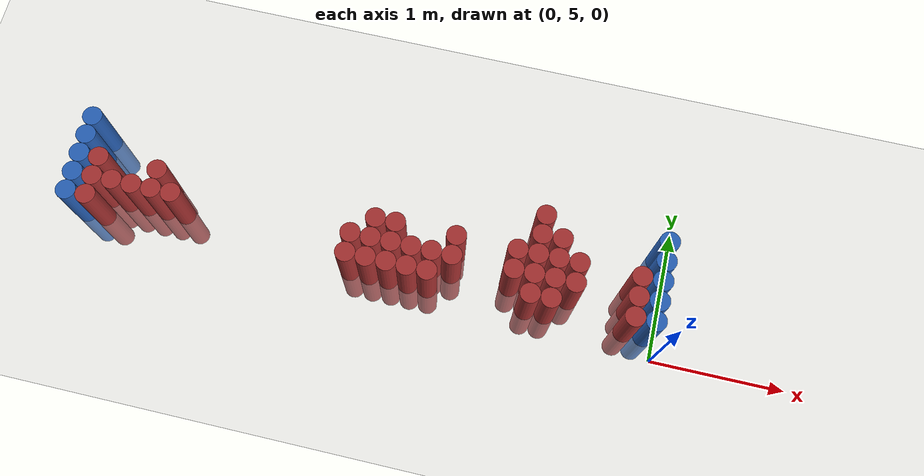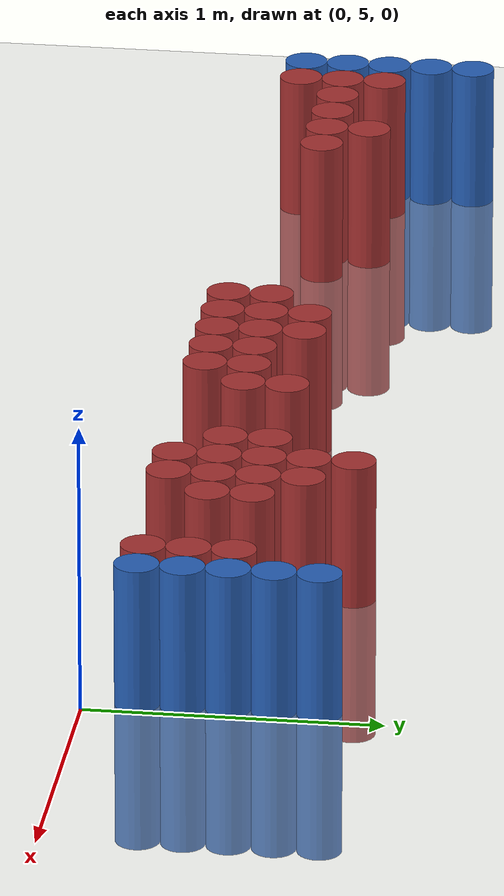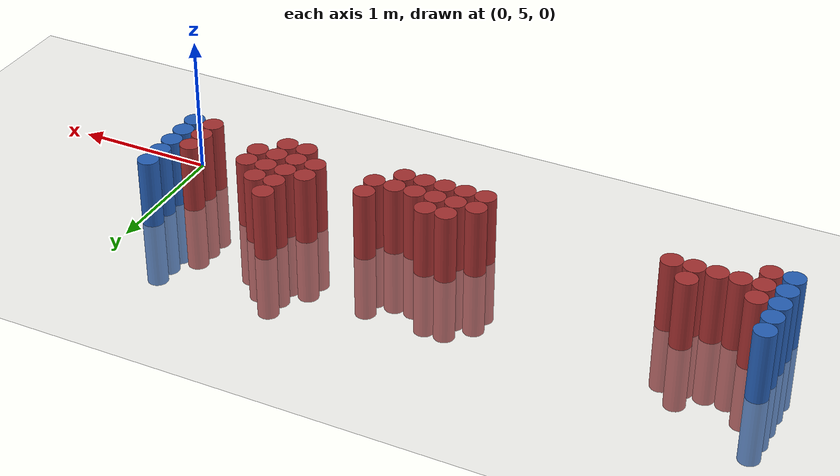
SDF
<sdf version="1.6">
 <world name="default">
  <model name="ground_plane">
   <static>1</static>
   <link name="link">
    <collision name="collision">
     <geometry><plane><normal>0 0 1</normal><size>100 100</size></plane></geometry>
     <surface><friction><ode><mu>100</mu><mu2>50</mu2></ode></friction></surface>
    </collision>
    <visual name="visual">
     <cast_shadows>0</cast_shadows>
     <geometry><plane><normal>0 0 1</normal><size>100 100</size></plane></geometry>
     <material>
      <script><uri>file://media/materials/scripts/gazebo.material</uri><name>Gazebo/Grey</name></script>
     </material>
    </visual>
   </link>
  </model>
  <model name="unit_cylinder_96">
   <static>1</static>
   <pose>-4.425000 5.175000 0.000000 0.000000 0.000000 0.000000</pose>
   <link name="link">
    <inertial>
     <mass>1</mass>
     <inertia><ixx>0.145833</ixx><ixy>0</ixy><ixz>0</ixz><iyy>0.145833</iyy><iyz>0</iyz><izz>0.125</izz></inertia>
    </inertial>
    <collision name="collision">
     <geometry><cylinder><radius>0.075000</radius><length>1</length></cylinder></geometry>
    </collision>
    <visual name="visual">
     <geometry><cylinder><radius>0.075000</radius><length>1</length></cylinder></geometry>
     <material>
      <ambient>0.152000 0.379000 0.720000 1</ambient>
      <diffuse>0.152000 0.379000 0.720000 1</diffuse>
     </material>
     <material>
      <script><name>Gazebo/Grey</name><uri>file://media/materials/scripts/gazebo.material</uri></script>
     </material>
    </visual>
   </link>
  </model>
  <model name="unit_cylinder_97">
   <static>1</static>
   <pose>-4.425000 5.325000 0.000000 0.000000 0.000000 0.000000</pose>
   <link name="link">
    <inertial>
     <mass>1</mass>
     <inertia><ixx>0.145833</ixx><ixy>0</ixy><ixz>0</ixz><iyy>0.145833</iyy><iyz>0</iyz><izz>0.125</izz></inertia>
    </inertial>
    <collision name="collision">
     <geometry><cylinder><radius>0.075000</radius><length>1</length></cylinder></geometry>
    </collision>
    <visual name="visual">
     <geometry><cylinder><radius>0.075000</radius><length>1</length></cylinder></geometry>
     <material>
      <ambient>0.152000 0.379000 0.720000 1</ambient>
      <diffuse>0.152000 0.379000 0.720000 1</diffuse>
     </material>
     <material>
      <script><name>Gazebo/Grey</name><uri>file://media/materials/scripts/gazebo.material</uri></script>
     </material>
    </visual>
   </link>
  </model>
  <model name="unit_cylinder_98">
   <static>1</static>
   <pose>-4.425000 5.475000 0.000000 0.000000 0.000000 0.000000</pose>
   <link name="link">
    <inertial>
     <mass>1</mass>
     <inertia><ixx>0.145833</ixx><ixy>0</ixy><ixz>0</ixz><iyy>0.145833</iyy><iyz>0</iyz><izz>0.125</izz></inertia>
    </inertial>
    <collision name="collision">
     <geometry><cylinder><radius>0.075000</radius><length>1</length></cylinder></geometry>
    </collision>
    <visual name="visual">
     <geometry><cylinder><radius>0.075000</radius><length>1</length></cylinder></geometry>
     <material>
      <ambient>0.152000 0.379000 0.720000 1</ambient>
      <diffuse>0.152000 0.379000 0.720000 1</diffuse>
     </material>
     <material>
      <script><name>Gazebo/Grey</name><uri>file://media/materials/scripts/gazebo.material</uri></script>
     </material>
    </visual>
   </link>
  </model>
  <model name="unit_cylinder_99">
   <static>1</static>
   <pose>-4.425000 5.625000 0.000000 0.000000 0.000000 0.000000</pose>
   <link name="link">
    <inertial>
     <mass>1</mass>
     <inertia><ixx>0.145833</ixx><ixy>0</ixy><ixz>0</ixz><iyy>0.145833</iyy><iyz>0</iyz><izz>0.125</izz></inertia>
    </inertial>
    <collision name="collision">
     <geometry><cylinder><radius>0.075000</radius><length>1</length></cylinder></geometry>
    </collision>
    <visual name="visual">
     <geometry><cylinder><radius>0.075000</radius><length>1</length></cylinder></geometry>
     <material>
      <ambient>0.152000 0.379000 0.720000 1</ambient>
      <diffuse>0.152000 0.379000 0.720000 1</diffuse>
     </material>
     <material>
      <script><name>Gazebo/Grey</name><uri>file://media/materials/scripts/gazebo.material</uri></script>
     </material>
    </visual>
   </link>
  </model>
  <model name="unit_cylinder_100">
   <static>1</static>
   <pose>-4.425000 5.775000 0.000000 0.000000 0.000000 0.000000</pose>
   <link name="link">
    <inertial>
     <mass>1</mass>
     <inertia><ixx>0.145833</ixx><ixy>0</ixy><ixz>0</ixz><iyy>0.145833</iyy><iyz>0</iyz><izz>0.125</izz></inertia>
    </inertial>
    <collision name="collision">
     <geometry><cylinder><radius>0.075000</radius><length>1</length></cylinder></geometry>
    </collision>
    <visual name="visual">
     <geometry><cylinder><radius>0.075000</radius><length>1</length></cylinder></geometry>
     <material>
      <ambient>0.152000 0.379000 0.720000 1</ambient>
      <diffuse>0.152000 0.379000 0.720000 1</diffuse>
     </material>
     <material>
      <script><name>Gazebo/Grey</name><uri>file://media/materials/scripts/gazebo.material</uri></script>
     </material>
    </visual>
   </link>
  </model>
  <model name="unit_cylinder_126">
   <static>1</static>
   <pose>-4.275000 5.175000 0.000000 0.000000 0.000000 0.000000</pose>
   <link name="link">
    <inertial>
     <mass>1</mass>
     <inertia><ixx>0.145833</ixx><ixy>0</ixy><ixz>0</ixz><iyy>0.145833</iyy><iyz>0</iyz><izz>0.125</izz></inertia>
    </inertial>
    <collision name="collision">
     <geometry><cylinder><radius>0.075000</radius><length>1</length></cylinder></geometry>
    </collision>
    <visual name="visual">
     <geometry><cylinder><radius>0.075000</radius><length>1</length></cylinder></geometry>
     <material>
      <ambient>0.648000 0.192000 0.192000 1</ambient>
      <diffuse>0.648000 0.192000 0.192000 1</diffuse>
     </material>
     <material>
      <script><name>Gazebo/Grey</name><uri>file://media/materials/scripts/gazebo.material</uri></script>
     </material>
    </visual>
   </link>
  </model>
  <model name="unit_cylinder_127">
   <static>1</static>
   <pose>-4.275000 5.325000 0.000000 0.000000 0.000000 0.000000</pose>
   <link name="link">
    <inertial>
     <mass>1</mass>
     <inertia><ixx>0.145833</ixx><ixy>0</ixy><ixz>0</ixz><iyy>0.145833</iyy><iyz>0</iyz><izz>0.125</izz></inertia>
    </inertial>
    <collision name="collision">
     <geometry><cylinder><radius>0.075000</radius><length>1</length></cylinder></geometry>
    </collision>
    <visual name="visual">
     <geometry><cylinder><radius>0.075000</radius><length>1</length></cylinder></geometry>
     <material>
      <ambient>0.648000 0.192000 0.192000 1</ambient>
      <diffuse>0.648000 0.192000 0.192000 1</diffuse>
     </material>
     <material>
      <script><name>Gazebo/Grey</name><uri>file://media/materials/scripts/gazebo.material</uri></script>
     </material>
    </visual>
   </link>
  </model>
  <model name="unit_cylinder_128">
   <static>1</static>
   <pose>-4.275000 5.475000 0.000000 0.000000 0.000000 0.000000</pose>
   <link name="link">
    <inertial>
     <mass>1</mass>
     <inertia><ixx>0.145833</ixx><ixy>0</ixy><ixz>0</ixz><iyy>0.145833</iyy><iyz>0</iyz><izz>0.125</izz></inertia>
    </inertial>
    <collision name="collision">
     <geometry><cylinder><radius>0.075000</radius><length>1</length></cylinder></geometry>
    </collision>
    <visual name="visual">
     <geometry><cylinder><radius>0.075000</radius><length>1</length></cylinder></geometry>
     <material>
      <ambient>0.648000 0.192000 0.192000 1</ambient>
      <diffuse>0.648000 0.192000 0.192000 1</diffuse>
     </material>
     <material>
      <script><name>Gazebo/Grey</name><uri>file://media/materials/scripts/gazebo.material</uri></script>
     </material>
    </visual>
   </link>
  </model>
  <model name="unit_cylinder_135">
   <static>1</static>
   <pose>-4.125000 5.325000 0.000000 0.000000 0.000000 0.000000</pose>
   <link name="link">
    <inertial>
     <mass>1</mass>
     <inertia><ixx>0.145833</ixx><ixy>0</ixy><ixz>0</ixz><iyy>0.145833</iyy><iyz>0</iyz><izz>0.125</izz></inertia>
    </inertial>
    <collision name="collision">
     <geometry><cylinder><radius>0.075000</radius><length>1</length></cylinder></geometry>
    </collision>
    <visual name="visual">
     <geometry><cylinder><radius>0.075000</radius><length>1</length></cylinder></geometry>
     <material>
      <ambient>0.648000 0.192000 0.192000 1</ambient>
      <diffuse>0.648000 0.192000 0.192000 1</diffuse>
     </material>
     <material>
      <script><name>Gazebo/Grey</name><uri>file://media/materials/scripts/gazebo.material</uri></script>
     </material>
    </visual>
   </link>
  </model>
  <model name="unit_cylinder_143">
   <static>1</static>
   <pose>-3.975000 5.325000 0.000000 0.000000 0.000000 0.000000</pose>
   <link name="link">
    <inertial>
     <mass>1</mass>
     <inertia><ixx>0.145833</ixx><ixy>0</ixy><ixz>0</ixz><iyy>0.145833</iyy><iyz>0</iyz><izz>0.125</izz></inertia>
    </inertial>
    <collision name="collision">
     <geometry><cylinder><radius>0.075000</radius><length>1</length></cylinder></geometry>
    </collision>
    <visual name="visual">
     <geometry><cylinder><radius>0.075000</radius><length>1</length></cylinder></geometry>
     <material>
      <ambient>0.648000 0.192000 0.192000 1</ambient>
      <diffuse>0.648000 0.192000 0.192000 1</diffuse>
     </material>
     <material>
      <script><name>Gazebo/Grey</name><uri>file://media/materials/scripts/gazebo.material</uri></script>
     </material>
    </visual>
   </link>
  </model>
  <model name="unit_cylinder_159">
   <static>1</static>
   <pose>-3.825000 5.325000 0.000000 0.000000 0.000000 0.000000</pose>
   <link name="link">
    <inertial>
     <mass>1</mass>
     <inertia><ixx>0.145833</ixx><ixy>0</ixy><ixz>0</ixz><iyy>0.145833</iyy><iyz>0</iyz><izz>0.125</izz></inertia>
    </inertial>
    <collision name="collision">
     <geometry><cylinder><radius>0.075000</radius><length>1</length></cylinder></geometry>
    </collision>
    <visual name="visual">
     <geometry><cylinder><radius>0.075000</radius><length>1</length></cylinder></geometry>
     <material>
      <ambient>0.648000 0.192000 0.192000 1</ambient>
      <diffuse>0.648000 0.192000 0.192000 1</diffuse>
     </material>
     <material>
      <script><name>Gazebo/Grey</name><uri>file://media/materials/scripts/gazebo.material</uri></script>
     </material>
    </visual>
   </link>
  </model>
  <model name="unit_cylinder_160">
   <static>1</static>
   <pose>-3.825000 5.475000 0.000000 0.000000 0.000000 0.000000</pose>
   <link name="link">
    <inertial>
     <mass>1</mass>
     <inertia><ixx>0.145833</ixx><ixy>0</ixy><ixz>0</ixz><iyy>0.145833</iyy><iyz>0</iyz><izz>0.125</izz></inertia>
    </inertial>
    <collision name="collision">
     <geometry><cylinder><radius>0.075000</radius><length>1</length></cylinder></geometry>
    </collision>
    <visual name="visual">
     <geometry><cylinder><radius>0.075000</radius><length>1</length></cylinder></geometry>
     <material>
      <ambient>0.648000 0.192000 0.192000 1</ambient>
      <diffuse>0.648000 0.192000 0.192000 1</diffuse>
     </material>
     <material>
      <script><name>Gazebo/Grey</name><uri>file://media/materials/scripts/gazebo.material</uri></script>
     </material>
    </visual>
   </link>
  </model>
  <model name="unit_cylinder_171">
   <static>1</static>
   <pose>-3.675000 5.325000 0.000000 0.000000 0.000000 0.000000</pose>
   <link name="link">
    <inertial>
     <mass>1</mass>
     <inertia><ixx>0.145833</ixx><ixy>0</ixy><ixz>0</ixz><iyy>0.145833</iyy><iyz>0</iyz><izz>0.125</izz></inertia>
    </inertial>
    <collision name="collision">
     <geometry><cylinder><radius>0.075000</radius><length>1</length></cylinder></geometry>
    </collision>
    <visual name="visual">
     <geometry><cylinder><radius>0.075000</radius><length>1</length></cylinder></geometry>
     <material>
      <ambient>0.648000 0.192000 0.192000 1</ambient>
      <diffuse>0.648000 0.192000 0.192000 1</diffuse>
     </material>
     <material>
      <script><name>Gazebo/Grey</name><uri>file://media/materials/scripts/gazebo.material</uri></script>
     </material>
    </visual>
   </link>
  </model>
  <model name="unit_cylinder_190">
   <static>1</static>
   <pose>-2.325000 5.175000 0.000000 0.000000 0.000000 0.000000</pose>
   <link name="link">
    <inertial>
     <mass>1</mass>
     <inertia><ixx>0.145833</ixx><ixy>0</ixy><ixz>0</ixz><iyy>0.145833</iyy><iyz>0</iyz><izz>0.125</izz></inertia>
    </inertial>
    <collision name="collision">
     <geometry><cylinder><radius>0.075000</radius><length>1</length></cylinder></geometry>
    </collision>
    <visual name="visual">
     <geometry><cylinder><radius>0.075000</radius><length>1</length></cylinder></geometry>
     <material>
      <ambient>0.648000 0.192000 0.192000 1</ambient>
      <diffuse>0.648000 0.192000 0.192000 1</diffuse>
     </material>
     <material>
      <script><name>Gazebo/Grey</name><uri>file://media/materials/scripts/gazebo.material</uri></script>
     </material>
    </visual>
   </link>
  </model>
  <model name="unit_cylinder_191">
   <static>1</static>
   <pose>-2.325000 5.325000 0.000000 0.000000 0.000000 0.000000</pose>
   <link name="link">
    <inertial>
     <mass>1</mass>
     <inertia><ixx>0.145833</ixx><ixy>0</ixy><ixz>0</ixz><iyy>0.145833</iyy><iyz>0</iyz><izz>0.125</izz></inertia>
    </inertial>
    <collision name="collision">
     <geometry><cylinder><radius>0.075000</radius><length>1</length></cylinder></geometry>
    </collision>
    <visual name="visual">
     <geometry><cylinder><radius>0.075000</radius><length>1</length></cylinder></geometry>
     <material>
      <ambient>0.648000 0.192000 0.192000 1</ambient>
      <diffuse>0.648000 0.192000 0.192000 1</diffuse>
     </material>
     <material>
      <script><name>Gazebo/Grey</name><uri>file://media/materials/scripts/gazebo.material</uri></script>
     </material>
    </visual>
   </link>
  </model>
  <model name="unit_cylinder_195">
   <static>1</static>
   <pose>-2.175000 5.175000 0.000000 0.000000 0.000000 0.000000</pose>
   <link name="link">
    <inertial>
     <mass>1</mass>
     <inertia><ixx>0.145833</ixx><ixy>0</ixy><ixz>0</ixz><iyy>0.145833</iyy><iyz>0</iyz><izz>0.125</izz></inertia>
    </inertial>
    <collision name="collision">
     <geometry><cylinder><radius>0.075000</radius><length>1</length></cylinder></geometry>
    </collision>
    <visual name="visual">
     <geometry><cylinder><radius>0.075000</radius><length>1</length></cylinder></geometry>
     <material>
      <ambient>0.648000 0.192000 0.192000 1</ambient>
      <diffuse>0.648000 0.192000 0.192000 1</diffuse>
     </material>
     <material>
      <script><name>Gazebo/Grey</name><uri>file://media/materials/scripts/gazebo.material</uri></script>
     </material>
    </visual>
   </link>
  </model>
  <model name="unit_cylinder_196">
   <static>1</static>
   <pose>-2.175000 5.325000 0.000000 0.000000 0.000000 0.000000</pose>
   <link name="link">
    <inertial>
     <mass>1</mass>
     <inertia><ixx>0.145833</ixx><ixy>0</ixy><ixz>0</ixz><iyy>0.145833</iyy><iyz>0</iyz><izz>0.125</izz></inertia>
    </inertial>
    <collision name="collision">
     <geometry><cylinder><radius>0.075000</radius><length>1</length></cylinder></geometry>
    </collision>
    <visual name="visual">
     <geometry><cylinder><radius>0.075000</radius><length>1</length></cylinder></geometry>
     <material>
      <ambient>0.648000 0.192000 0.192000 1</ambient>
      <diffuse>0.648000 0.192000 0.192000 1</diffuse>
     </material>
     <material>
      <script><name>Gazebo/Grey</name><uri>file://media/materials/scripts/gazebo.material</uri></script>
     </material>
    </visual>
   </link>
  </model>
  <model name="unit_cylinder_197">
   <static>1</static>
   <pose>-2.175000 5.475000 0.000000 0.000000 0.000000 0.000000</pose>
   <link name="link">
    <inertial>
     <mass>1</mass>
     <inertia><ixx>0.145833</ixx><ixy>0</ixy><ixz>0</ixz><iyy>0.145833</iyy><iyz>0</iyz><izz>0.125</izz></inertia>
    </inertial>
    <collision name="collision">
     <geometry><cylinder><radius>0.075000</radius><length>1</length></cylinder></geometry>
    </collision>
    <visual name="visual">
     <geometry><cylinder><radius>0.075000</radius><length>1</length></cylinder></geometry>
     <material>
      <ambient>0.648000 0.192000 0.192000 1</ambient>
      <diffuse>0.648000 0.192000 0.192000 1</diffuse>
     </material>
     <material>
      <script><name>Gazebo/Grey</name><uri>file://media/materials/scripts/gazebo.material</uri></script>
     </material>
    </visual>
   </link>
  </model>
  <model name="unit_cylinder_204">
   <static>1</static>
   <pose>-2.025000 5.175000 0.000000 0.000000 0.000000 0.000000</pose>
   <link name="link">
    <inertial>
     <mass>1</mass>
     <inertia><ixx>0.145833</ixx><ixy>0</ixy><ixz>0</ixz><iyy>0.145833</iyy><iyz>0</iyz><izz>0.125</izz></inertia>
    </inertial>
    <collision name="collision">
     <geometry><cylinder><radius>0.075000</radius><length>1</length></cylinder></geometry>
    </collision>
    <visual name="visual">
     <geometry><cylinder><radius>0.075000</radius><length>1</length></cylinder></geometry>
     <material>
      <ambient>0.648000 0.192000 0.192000 1</ambient>
      <diffuse>0.648000 0.192000 0.192000 1</diffuse>
     </material>
     <material>
      <script><name>Gazebo/Grey</name><uri>file://media/materials/scripts/gazebo.material</uri></script>
     </material>
    </visual>
   </link>
  </model>
  <model name="unit_cylinder_205">
   <static>1</static>
   <pose>-2.025000 5.325000 0.000000 0.000000 0.000000 0.000000</pose>
   <link name="link">
    <inertial>
     <mass>1</mass>
     <inertia><ixx>0.145833</ixx><ixy>0</ixy><ixz>0</ixz><iyy>0.145833</iyy><iyz>0</iyz><izz>0.125</izz></inertia>
    </inertial>
    <collision name="collision">
     <geometry><cylinder><radius>0.075000</radius><length>1</length></cylinder></geometry>
    </collision>
    <visual name="visual">
     <geometry><cylinder><radius>0.075000</radius><length>1</length></cylinder></geometry>
     <material>
      <ambient>0.648000 0.192000 0.192000 1</ambient>
      <diffuse>0.648000 0.192000 0.192000 1</diffuse>
     </material>
     <material>
      <script><name>Gazebo/Grey</name><uri>file://media/materials/scripts/gazebo.material</uri></script>
     </material>
    </visual>
   </link>
  </model>
  <model name="unit_cylinder_206">
   <static>1</static>
   <pose>-2.025000 5.475000 0.000000 0.000000 0.000000 0.000000</pose>
   <link name="link">
    <inertial>
     <mass>1</mass>
     <inertia><ixx>0.145833</ixx><ixy>0</ixy><ixz>0</ixz><iyy>0.145833</iyy><iyz>0</iyz><izz>0.125</izz></inertia>
    </inertial>
    <collision name="collision">
     <geometry><cylinder><radius>0.075000</radius><length>1</length></cylinder></geometry>
    </collision>
    <visual name="visual">
     <geometry><cylinder><radius>0.075000</radius><length>1</length></cylinder></geometry>
     <material>
      <ambient>0.648000 0.192000 0.192000 1</ambient>
      <diffuse>0.648000 0.192000 0.192000 1</diffuse>
     </material>
     <material>
      <script><name>Gazebo/Grey</name><uri>file://media/materials/scripts/gazebo.material</uri></script>
     </material>
    </visual>
   </link>
  </model>
  <model name="unit_cylinder_213">
   <static>1</static>
   <pose>-1.875000 5.175000 0.000000 0.000000 0.000000 0.000000</pose>
   <link name="link">
    <inertial>
     <mass>1</mass>
     <inertia><ixx>0.145833</ixx><ixy>0</ixy><ixz>0</ixz><iyy>0.145833</iyy><iyz>0</iyz><izz>0.125</izz></inertia>
    </inertial>
    <collision name="collision">
     <geometry><cylinder><radius>0.075000</radius><length>1</length></cylinder></geometry>
    </collision>
    <visual name="visual">
     <geometry><cylinder><radius>0.075000</radius><length>1</length></cylinder></geometry>
     <material>
      <ambient>0.648000 0.192000 0.192000 1</ambient>
      <diffuse>0.648000 0.192000 0.192000 1</diffuse>
     </material>
     <material>
      <script><name>Gazebo/Grey</name><uri>file://media/materials/scripts/gazebo.material</uri></script>
     </material>
    </visual>
   </link>
  </model>
  <model name="unit_cylinder_214">
   <static>1</static>
   <pose>-1.875000 5.325000 0.000000 0.000000 0.000000 0.000000</pose>
   <link name="link">
    <inertial>
     <mass>1</mass>
     <inertia><ixx>0.145833</ixx><ixy>0</ixy><ixz>0</ixz><iyy>0.145833</iyy><iyz>0</iyz><izz>0.125</izz></inertia>
    </inertial>
    <collision name="collision">
     <geometry><cylinder><radius>0.075000</radius><length>1</length></cylinder></geometry>
    </collision>
    <visual name="visual">
     <geometry><cylinder><radius>0.075000</radius><length>1</length></cylinder></geometry>
     <material>
      <ambient>0.648000 0.192000 0.192000 1</ambient>
      <diffuse>0.648000 0.192000 0.192000 1</diffuse>
     </material>
     <material>
      <script><name>Gazebo/Grey</name><uri>file://media/materials/scripts/gazebo.material</uri></script>
     </material>
    </visual>
   </link>
  </model>
  <model name="unit_cylinder_217">
   <static>1</static>
   <pose>-1.725000 5.175000 0.000000 0.000000 0.000000 0.000000</pose>
   <link name="link">
    <inertial>
     <mass>1</mass>
     <inertia><ixx>0.145833</ixx><ixy>0</ixy><ixz>0</ixz><iyy>0.145833</iyy><iyz>0</iyz><izz>0.125</izz></inertia>
    </inertial>
    <collision name="collision">
     <geometry><cylinder><radius>0.075000</radius><length>1</length></cylinder></geometry>
    </collision>
    <visual name="visual">
     <geometry><cylinder><radius>0.075000</radius><length>1</length></cylinder></geometry>
     <material>
      <ambient>0.648000 0.192000 0.192000 1</ambient>
      <diffuse>0.648000 0.192000 0.192000 1</diffuse>
     </material>
     <material>
      <script><name>Gazebo/Grey</name><uri>file://media/materials/scripts/gazebo.material</uri></script>
     </material>
    </visual>
   </link>
  </model>
  <model name="unit_cylinder_218">
   <static>1</static>
   <pose>-1.725000 5.325000 0.000000 0.000000 0.000000 0.000000</pose>
   <link name="link">
    <inertial>
     <mass>1</mass>
     <inertia><ixx>0.145833</ixx><ixy>0</ixy><ixz>0</ixz><iyy>0.145833</iyy><iyz>0</iyz><izz>0.125</izz></inertia>
    </inertial>
    <collision name="collision">
     <geometry><cylinder><radius>0.075000</radius><length>1</length></cylinder></geometry>
    </collision>
    <visual name="visual">
     <geometry><cylinder><radius>0.075000</radius><length>1</length></cylinder></geometry>
     <material>
      <ambient>0.648000 0.192000 0.192000 1</ambient>
      <diffuse>0.648000 0.192000 0.192000 1</diffuse>
     </material>
     <material>
      <script><name>Gazebo/Grey</name><uri>file://media/materials/scripts/gazebo.material</uri></script>
     </material>
    </visual>
   </link>
  </model>
  <model name="unit_cylinder_221">
   <static>1</static>
   <pose>-1.575000 5.325000 0.000000 0.000000 0.000000 0.000000</pose>
   <link name="link">
    <inertial>
     <mass>1</mass>
     <inertia><ixx>0.145833</ixx><ixy>0</ixy><ixz>0</ixz><iyy>0.145833</iyy><iyz>0</iyz><izz>0.125</izz></inertia>
    </inertial>
    <collision name="collision">
     <geometry><cylinder><radius>0.075000</radius><length>1</length></cylinder></geometry>
    </collision>
    <visual name="visual">
     <geometry><cylinder><radius>0.075000</radius><length>1</length></cylinder></geometry>
     <material>
      <ambient>0.648000 0.192000 0.192000 1</ambient>
      <diffuse>0.648000 0.192000 0.192000 1</diffuse>
     </material>
     <material>
      <script><name>Gazebo/Grey</name><uri>file://media/materials/scripts/gazebo.material</uri></script>
     </material>
    </visual>
   </link>
  </model>
  <model name="unit_cylinder_222">
   <static>1</static>
   <pose>-1.575000 5.475000 0.000000 0.000000 0.000000 0.000000</pose>
   <link name="link">
    <inertial>
     <mass>1</mass>
     <inertia><ixx>0.145833</ixx><ixy>0</ixy><ixz>0</ixz><iyy>0.145833</iyy><iyz>0</iyz><izz>0.125</izz></inertia>
    </inertial>
    <collision name="collision">
     <geometry><cylinder><radius>0.075000</radius><length>1</length></cylinder></geometry>
    </collision>
    <visual name="visual">
     <geometry><cylinder><radius>0.075000</radius><length>1</length></cylinder></geometry>
     <material>
      <ambient>0.648000 0.192000 0.192000 1</ambient>
      <diffuse>0.648000 0.192000 0.192000 1</diffuse>
     </material>
     <material>
      <script><name>Gazebo/Grey</name><uri>file://media/materials/scripts/gazebo.material</uri></script>
     </material>
    </visual>
   </link>
  </model>
  <model name="unit_cylinder_246">
   <static>1</static>
   <pose>-1.125000 5.325000 0.000000 0.000000 0.000000 0.000000</pose>
   <link name="link">
    <inertial>
     <mass>1</mass>
     <inertia><ixx>0.145833</ixx><ixy>0</ixy><ixz>0</ixz><iyy>0.145833</iyy><iyz>0</iyz><izz>0.125</izz></inertia>
    </inertial>
    <collision name="collision">
     <geometry><cylinder><radius>0.075000</radius><length>1</length></cylinder></geometry>
    </collision>
    <visual name="visual">
     <geometry><cylinder><radius>0.075000</radius><length>1</length></cylinder></geometry>
     <material>
      <ambient>0.648000 0.192000 0.192000 1</ambient>
      <diffuse>0.648000 0.192000 0.192000 1</diffuse>
     </material>
     <material>
      <script><name>Gazebo/Grey</name><uri>file://media/materials/scripts/gazebo.material</uri></script>
     </material>
    </visual>
   </link>
  </model>
  <model name="unit_cylinder_247">
   <static>1</static>
   <pose>-1.125000 5.475000 0.000000 0.000000 0.000000 0.000000</pose>
   <link name="link">
    <inertial>
     <mass>1</mass>
     <inertia><ixx>0.145833</ixx><ixy>0</ixy><ixz>0</ixz><iyy>0.145833</iyy><iyz>0</iyz><izz>0.125</izz></inertia>
    </inertial>
    <collision name="collision">
     <geometry><cylinder><radius>0.075000</radius><length>1</length></cylinder></geometry>
    </collision>
    <visual name="visual">
     <geometry><cylinder><radius>0.075000</radius><length>1</length></cylinder></geometry>
     <material>
      <ambient>0.648000 0.192000 0.192000 1</ambient>
      <diffuse>0.648000 0.192000 0.192000 1</diffuse>
     </material>
     <material>
      <script><name>Gazebo/Grey</name><uri>file://media/materials/scripts/gazebo.material</uri></script>
     </material>
    </visual>
   </link>
  </model>
  <model name="unit_cylinder_258">
   <static>1</static>
   <pose>-0.975000 5.175000 0.000000 0.000000 0.000000 0.000000</pose>
   <link name="link">
    <inertial>
     <mass>1</mass>
     <inertia><ixx>0.145833</ixx><ixy>0</ixy><ixz>0</ixz><iyy>0.145833</iyy><iyz>0</iyz><izz>0.125</izz></inertia>
    </inertial>
    <collision name="collision">
     <geometry><cylinder><radius>0.075000</radius><length>1</length></cylinder></geometry>
    </collision>
    <visual name="visual">
     <geometry><cylinder><radius>0.075000</radius><length>1</length></cylinder></geometry>
     <material>
      <ambient>0.648000 0.192000 0.192000 1</ambient>
      <diffuse>0.648000 0.192000 0.192000 1</diffuse>
     </material>
     <material>
      <script><name>Gazebo/Grey</name><uri>file://media/materials/scripts/gazebo.material</uri></script>
     </material>
    </visual>
   </link>
  </model>
  <model name="unit_cylinder_259">
   <static>1</static>
   <pose>-0.975000 5.325000 0.000000 0.000000 0.000000 0.000000</pose>
   <link name="link">
    <inertial>
     <mass>1</mass>
     <inertia><ixx>0.145833</ixx><ixy>0</ixy><ixz>0</ixz><iyy>0.145833</iyy><iyz>0</iyz><izz>0.125</izz></inertia>
    </inertial>
    <collision name="collision">
     <geometry><cylinder><radius>0.075000</radius><length>1</length></cylinder></geometry>
    </collision>
    <visual name="visual">
     <geometry><cylinder><radius>0.075000</radius><length>1</length></cylinder></geometry>
     <material>
      <ambient>0.648000 0.192000 0.192000 1</ambient>
      <diffuse>0.648000 0.192000 0.192000 1</diffuse>
     </material>
     <material>
      <script><name>Gazebo/Grey</name><uri>file://media/materials/scripts/gazebo.material</uri></script>
     </material>
    </visual>
   </link>
  </model>
  <model name="unit_cylinder_260">
   <static>1</static>
   <pose>-0.975000 5.475000 0.000000 0.000000 0.000000 0.000000</pose>
   <link name="link">
    <inertial>
     <mass>1</mass>
     <inertia><ixx>0.145833</ixx><ixy>0</ixy><ixz>0</ixz><iyy>0.145833</iyy><iyz>0</iyz><izz>0.125</izz></inertia>
    </inertial>
    <collision name="collision">
     <geometry><cylinder><radius>0.075000</radius><length>1</length></cylinder></geometry>
    </collision>
    <visual name="visual">
     <geometry><cylinder><radius>0.075000</radius><length>1</length></cylinder></geometry>
     <material>
      <ambient>0.648000 0.192000 0.192000 1</ambient>
      <diffuse>0.648000 0.192000 0.192000 1</diffuse>
     </material>
     <material>
      <script><name>Gazebo/Grey</name><uri>file://media/materials/scripts/gazebo.material</uri></script>
     </material>
    </visual>
   </link>
  </model>
  <model name="unit_cylinder_261">
   <static>1</static>
   <pose>-0.975000 5.625000 0.000000 0.000000 0.000000 0.000000</pose>
   <link name="link">
    <inertial>
     <mass>1</mass>
     <inertia><ixx>0.145833</ixx><ixy>0</ixy><ixz>0</ixz><iyy>0.145833</iyy><iyz>0</iyz><izz>0.125</izz></inertia>
    </inertial>
    <collision name="collision">
     <geometry><cylinder><radius>0.075000</radius><length>1</length></cylinder></geometry>
    </collision>
    <visual name="visual">
     <geometry><cylinder><radius>0.075000</radius><length>1</length></cylinder></geometry>
     <material>
      <ambient>0.648000 0.192000 0.192000 1</ambient>
      <diffuse>0.648000 0.192000 0.192000 1</diffuse>
     </material>
     <material>
      <script><name>Gazebo/Grey</name><uri>file://media/materials/scripts/gazebo.material</uri></script>
     </material>
    </visual>
   </link>
  </model>
  <model name="unit_cylinder_262">
   <static>1</static>
   <pose>-0.975000 5.775000 0.000000 0.000000 0.000000 0.000000</pose>
   <link name="link">
    <inertial>
     <mass>1</mass>
     <inertia><ixx>0.145833</ixx><ixy>0</ixy><ixz>0</ixz><iyy>0.145833</iyy><iyz>0</iyz><izz>0.125</izz></inertia>
    </inertial>
    <collision name="collision">
     <geometry><cylinder><radius>0.075000</radius><length>1</length></cylinder></geometry>
    </collision>
    <visual name="visual">
     <geometry><cylinder><radius>0.075000</radius><length>1</length></cylinder></geometry>
     <material>
      <ambient>0.648000 0.192000 0.192000 1</ambient>
      <diffuse>0.648000 0.192000 0.192000 1</diffuse>
     </material>
     <material>
      <script><name>Gazebo/Grey</name><uri>file://media/materials/scripts/gazebo.material</uri></script>
     </material>
    </visual>
   </link>
  </model>
  <model name="unit_cylinder_267">
   <static>1</static>
   <pose>-0.825000 5.175000 0.000000 0.000000 0.000000 0.000000</pose>
   <link name="link">
    <inertial>
     <mass>1</mass>
     <inertia><ixx>0.145833</ixx><ixy>0</ixy><ixz>0</ixz><iyy>0.145833</iyy><iyz>0</iyz><izz>0.125</izz></inertia>
    </inertial>
    <collision name="collision">
     <geometry><cylinder><radius>0.075000</radius><length>1</length></cylinder></geometry>
    </collision>
    <visual name="visual">
     <geometry><cylinder><radius>0.075000</radius><length>1</length></cylinder></geometry>
     <material>
      <ambient>0.648000 0.192000 0.192000 1</ambient>
      <diffuse>0.648000 0.192000 0.192000 1</diffuse>
     </material>
     <material>
      <script><name>Gazebo/Grey</name><uri>file://media/materials/scripts/gazebo.material</uri></script>
     </material>
    </visual>
   </link>
  </model>
  <model name="unit_cylinder_268">
   <static>1</static>
   <pose>-0.825000 5.325000 0.000000 0.000000 0.000000 0.000000</pose>
   <link name="link">
    <inertial>
     <mass>1</mass>
     <inertia><ixx>0.145833</ixx><ixy>0</ixy><ixz>0</ixz><iyy>0.145833</iyy><iyz>0</iyz><izz>0.125</izz></inertia>
    </inertial>
    <collision name="collision">
     <geometry><cylinder><radius>0.075000</radius><length>1</length></cylinder></geometry>
    </collision>
    <visual name="visual">
     <geometry><cylinder><radius>0.075000</radius><length>1</length></cylinder></geometry>
     <material>
      <ambient>0.648000 0.192000 0.192000 1</ambient>
      <diffuse>0.648000 0.192000 0.192000 1</diffuse>
     </material>
     <material>
      <script><name>Gazebo/Grey</name><uri>file://media/materials/scripts/gazebo.material</uri></script>
     </material>
    </visual>
   </link>
  </model>
  <model name="unit_cylinder_269">
   <static>1</static>
   <pose>-0.825000 5.475000 0.000000 0.000000 0.000000 0.000000</pose>
   <link name="link">
    <inertial>
     <mass>1</mass>
     <inertia><ixx>0.145833</ixx><ixy>0</ixy><ixz>0</ixz><iyy>0.145833</iyy><iyz>0</iyz><izz>0.125</izz></inertia>
    </inertial>
    <collision name="collision">
     <geometry><cylinder><radius>0.075000</radius><length>1</length></cylinder></geometry>
    </collision>
    <visual name="visual">
     <geometry><cylinder><radius>0.075000</radius><length>1</length></cylinder></geometry>
     <material>
      <ambient>0.648000 0.192000 0.192000 1</ambient>
      <diffuse>0.648000 0.192000 0.192000 1</diffuse>
     </material>
     <material>
      <script><name>Gazebo/Grey</name><uri>file://media/materials/scripts/gazebo.material</uri></script>
     </material>
    </visual>
   </link>
  </model>
  <model name="unit_cylinder_270">
   <static>1</static>
   <pose>-0.825000 5.625000 0.000000 0.000000 0.000000 0.000000</pose>
   <link name="link">
    <inertial>
     <mass>1</mass>
     <inertia><ixx>0.145833</ixx><ixy>0</ixy><ixz>0</ixz><iyy>0.145833</iyy><iyz>0</iyz><izz>0.125</izz></inertia>
    </inertial>
    <collision name="collision">
     <geometry><cylinder><radius>0.075000</radius><length>1</length></cylinder></geometry>
    </collision>
    <visual name="visual">
     <geometry><cylinder><radius>0.075000</radius><length>1</length></cylinder></geometry>
     <material>
      <ambient>0.648000 0.192000 0.192000 1</ambient>
      <diffuse>0.648000 0.192000 0.192000 1</diffuse>
     </material>
     <material>
      <script><name>Gazebo/Grey</name><uri>file://media/materials/scripts/gazebo.material</uri></script>
     </material>
    </visual>
   </link>
  </model>
  <model name="unit_cylinder_275">
   <static>1</static>
   <pose>-0.675000 5.325000 0.000000 0.000000 0.000000 0.000000</pose>
   <link name="link">
    <inertial>
     <mass>1</mass>
     <inertia><ixx>0.145833</ixx><ixy>0</ixy><ixz>0</ixz><iyy>0.145833</iyy><iyz>0</iyz><izz>0.125</izz></inertia>
    </inertial>
    <collision name="collision">
     <geometry><cylinder><radius>0.075000</radius><length>1</length></cylinder></geometry>
    </collision>
    <visual name="visual">
     <geometry><cylinder><radius>0.075000</radius><length>1</length></cylinder></geometry>
     <material>
      <ambient>0.648000 0.192000 0.192000 1</ambient>
      <diffuse>0.648000 0.192000 0.192000 1</diffuse>
     </material>
     <material>
      <script><name>Gazebo/Grey</name><uri>file://media/materials/scripts/gazebo.material</uri></script>
     </material>
    </visual>
   </link>
  </model>
  <model name="unit_cylinder_276">
   <static>1</static>
   <pose>-0.675000 5.475000 0.000000 0.000000 0.000000 0.000000</pose>
   <link name="link">
    <inertial>
     <mass>1</mass>
     <inertia><ixx>0.145833</ixx><ixy>0</ixy><ixz>0</ixz><iyy>0.145833</iyy><iyz>0</iyz><izz>0.125</izz></inertia>
    </inertial>
    <collision name="collision">
     <geometry><cylinder><radius>0.075000</radius><length>1</length></cylinder></geometry>
    </collision>
    <visual name="visual">
     <geometry><cylinder><radius>0.075000</radius><length>1</length></cylinder></geometry>
     <material>
      <ambient>0.648000 0.192000 0.192000 1</ambient>
      <diffuse>0.648000 0.192000 0.192000 1</diffuse>
     </material>
     <material>
      <script><name>Gazebo/Grey</name><uri>file://media/materials/scripts/gazebo.material</uri></script>
     </material>
    </visual>
   </link>
  </model>
  <model name="unit_cylinder_288">
   <static>1</static>
   <pose>-0.225000 5.175000 0.000000 0.000000 0.000000 0.000000</pose>
   <link name="link">
    <inertial>
     <mass>1</mass>
     <inertia><ixx>0.145833</ixx><ixy>0</ixy><ixz>0</ixz><iyy>0.145833</iyy><iyz>0</iyz><izz>0.125</izz></inertia>
    </inertial>
    <collision name="collision">
     <geometry><cylinder><radius>0.075000</radius><length>1</length></cylinder></geometry>
    </collision>
    <visual name="visual">
     <geometry><cylinder><radius>0.075000</radius><length>1</length></cylinder></geometry>
     <material>
      <ambient>0.648000 0.192000 0.192000 1</ambient>
      <diffuse>0.648000 0.192000 0.192000 1</diffuse>
     </material>
     <material>
      <script><name>Gazebo/Grey</name><uri>file://media/materials/scripts/gazebo.material</uri></script>
     </material>
    </visual>
   </link>
  </model>
  <model name="unit_cylinder_289">
   <static>1</static>
   <pose>-0.225000 5.325000 0.000000 0.000000 0.000000 0.000000</pose>
   <link name="link">
    <inertial>
     <mass>1</mass>
     <inertia><ixx>0.145833</ixx><ixy>0</ixy><ixz>0</ixz><iyy>0.145833</iyy><iyz>0</iyz><izz>0.125</izz></inertia>
    </inertial>
    <collision name="collision">
     <geometry><cylinder><radius>0.075000</radius><length>1</length></cylinder></geometry>
    </collision>
    <visual name="visual">
     <geometry><cylinder><radius>0.075000</radius><length>1</length></cylinder></geometry>
     <material>
      <ambient>0.648000 0.192000 0.192000 1</ambient>
      <diffuse>0.648000 0.192000 0.192000 1</diffuse>
     </material>
     <material>
      <script><name>Gazebo/Grey</name><uri>file://media/materials/scripts/gazebo.material</uri></script>
     </material>
    </visual>
   </link>
  </model>
  <model name="unit_cylinder_290">
   <static>1</static>
   <pose>-0.225000 5.475000 0.000000 0.000000 0.000000 0.000000</pose>
   <link name="link">
    <inertial>
     <mass>1</mass>
     <inertia><ixx>0.145833</ixx><ixy>0</ixy><ixz>0</ixz><iyy>0.145833</iyy><iyz>0</iyz><izz>0.125</izz></inertia>
    </inertial>
    <collision name="collision">
     <geometry><cylinder><radius>0.075000</radius><length>1</length></cylinder></geometry>
    </collision>
    <visual name="visual">
     <geometry><cylinder><radius>0.075000</radius><length>1</length></cylinder></geometry>
     <material>
      <ambient>0.648000 0.192000 0.192000 1</ambient>
      <diffuse>0.648000 0.192000 0.192000 1</diffuse>
     </material>
     <material>
      <script><name>Gazebo/Grey</name><uri>file://media/materials/scripts/gazebo.material</uri></script>
     </material>
    </visual>
   </link>
  </model>
  <model name="unit_cylinder_306">
   <static>1</static>
   <pose>-0.075000 5.175000 0.000000 0.000000 0.000000 0.000000</pose>
   <link name="link">
    <inertial>
     <mass>1</mass>
     <inertia><ixx>0.145833</ixx><ixy>0</ixy><ixz>0</ixz><iyy>0.145833</iyy><iyz>0</iyz><izz>0.125</izz></inertia>
    </inertial>
    <collision name="collision">
     <geometry><cylinder><radius>0.075000</radius><length>1</length></cylinder></geometry>
    </collision>
    <visual name="visual">
     <geometry><cylinder><radius>0.075000</radius><length>1</length></cylinder></geometry>
     <material>
      <ambient>0.152000 0.379000 0.720000 1</ambient>
      <diffuse>0.152000 0.379000 0.720000 1</diffuse>
     </material>
     <material>
      <script><name>Gazebo/Grey</name><uri>file://media/materials/scripts/gazebo.material</uri></script>
     </material>
    </visual>
   </link>
  </model>
  <model name="unit_cylinder_307">
   <static>1</static>
   <pose>-0.075000 5.325000 0.000000 0.000000 0.000000 0.000000</pose>
   <link name="link">
    <inertial>
     <mass>1</mass>
     <inertia><ixx>0.145833</ixx><ixy>0</ixy><ixz>0</ixz><iyy>0.145833</iyy><iyz>0</iyz><izz>0.125</izz></inertia>
    </inertial>
    <collision name="collision">
     <geometry><cylinder><radius>0.075000</radius><length>1</length></cylinder></geometry>
    </collision>
    <visual name="visual">
     <geometry><cylinder><radius>0.075000</radius><length>1</length></cylinder></geometry>
     <material>
      <ambient>0.152000 0.379000 0.720000 1</ambient>
      <diffuse>0.152000 0.379000 0.720000 1</diffuse>
     </material>
     <material>
      <script><name>Gazebo/Grey</name><uri>file://media/materials/scripts/gazebo.material</uri></script>
     </material>
    </visual>
   </link>
  </model>
  <model name="unit_cylinder_308">
   <static>1</static>
   <pose>-0.075000 5.475000 0.000000 0.000000 0.000000 0.000000</pose>
   <link name="link">
    <inertial>
     <mass>1</mass>
     <inertia><ixx>0.145833</ixx><ixy>0</ixy><ixz>0</ixz><iyy>0.145833</iyy><iyz>0</iyz><izz>0.125</izz></inertia>
    </inertial>
    <collision name="collision">
     <geometry><cylinder><radius>0.075000</radius><length>1</length></cylinder></geometry>
    </collision>
    <visual name="visual">
     <geometry><cylinder><radius>0.075000</radius><length>1</length></cylinder></geometry>
     <material>
      <ambient>0.152000 0.379000 0.720000 1</ambient>
      <diffuse>0.152000 0.379000 0.720000 1</diffuse>
     </material>
     <material>
      <script><name>Gazebo/Grey</name><uri>file://media/materials/scripts/gazebo.material</uri></script>
     </material>
    </visual>
   </link>
  </model>
  <model name="unit_cylinder_309">
   <static>1</static>
   <pose>-0.075000 5.625000 0.000000 0.000000 0.000000 0.000000</pose>
   <link name="link">
    <inertial>
     <mass>1</mass>
     <inertia><ixx>0.145833</ixx><ixy>0</ixy><ixz>0</ixz><iyy>0.145833</iyy><iyz>0</iyz><izz>0.125</izz></inertia>
    </inertial>
    <collision name="collision">
     <geometry><cylinder><radius>0.075000</radius><length>1</length></cylinder></geometry>
    </collision>
    <visual name="visual">
     <geometry><cylinder><radius>0.075000</radius><length>1</length></cylinder></geometry>
     <material>
      <ambient>0.152000 0.379000 0.720000 1</ambient>
      <diffuse>0.152000 0.379000 0.720000 1</diffuse>
     </material>
     <material>
      <script><name>Gazebo/Grey</name><uri>file://media/materials/scripts/gazebo.material</uri></script>
     </material>
    </visual>
   </link>
  </model>
  <model name="unit_cylinder_310">
   <static>1</static>
   <pose>-0.075000 5.775000 0.000000 0.000000 0.000000 0.000000</pose>
   <link name="link">
    <inertial>
     <mass>1</mass>
     <inertia><ixx>0.145833</ixx><ixy>0</ixy><ixz>0</ixz><iyy>0.145833</iyy><iyz>0</iyz><izz>0.125</izz></inertia>
    </inertial>
    <collision name="collision">
     <geometry><cylinder><radius>0.075000</radius><length>1</length></cylinder></geometry>
    </collision>
    <visual name="visual">
     <geometry><cylinder><radius>0.075000</radius><length>1</length></cylinder></geometry>
     <material>
      <ambient>0.152000 0.379000 0.720000 1</ambient>
      <diffuse>0.152000 0.379000 0.720000 1</diffuse>
     </material>
     <material>
      <script><name>Gazebo/Grey</name><uri>file://media/materials/scripts/gazebo.material</uri></script>
     </material>
    </visual>
   </link>
  </model>
 </world>
</sdf>
